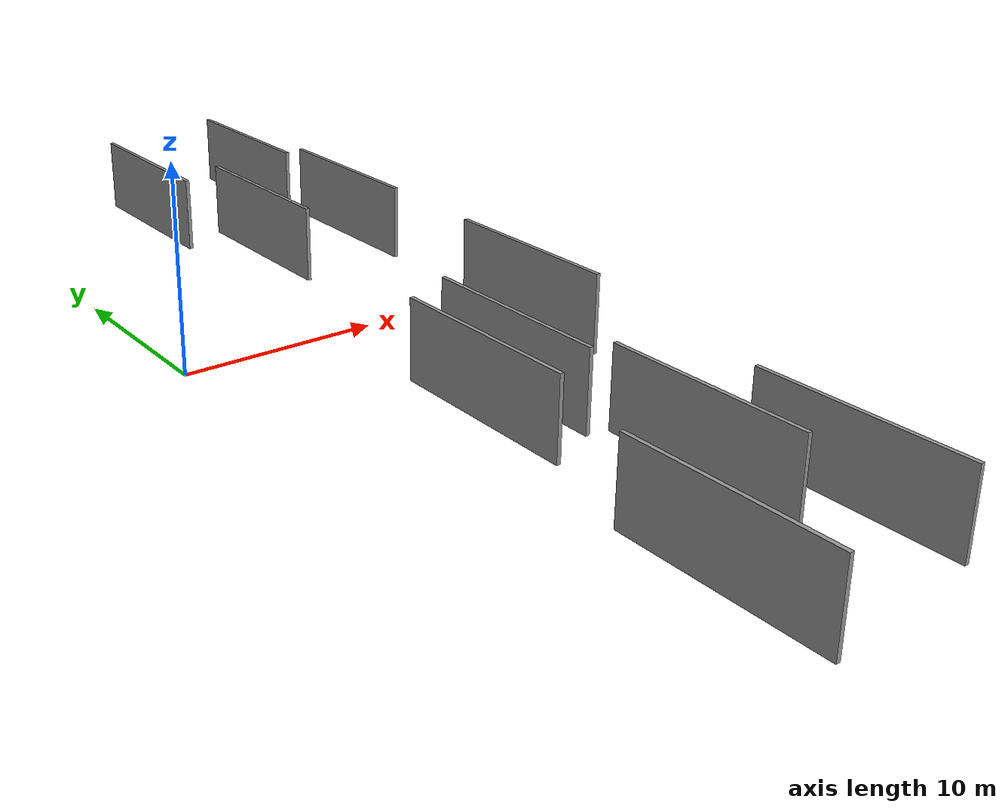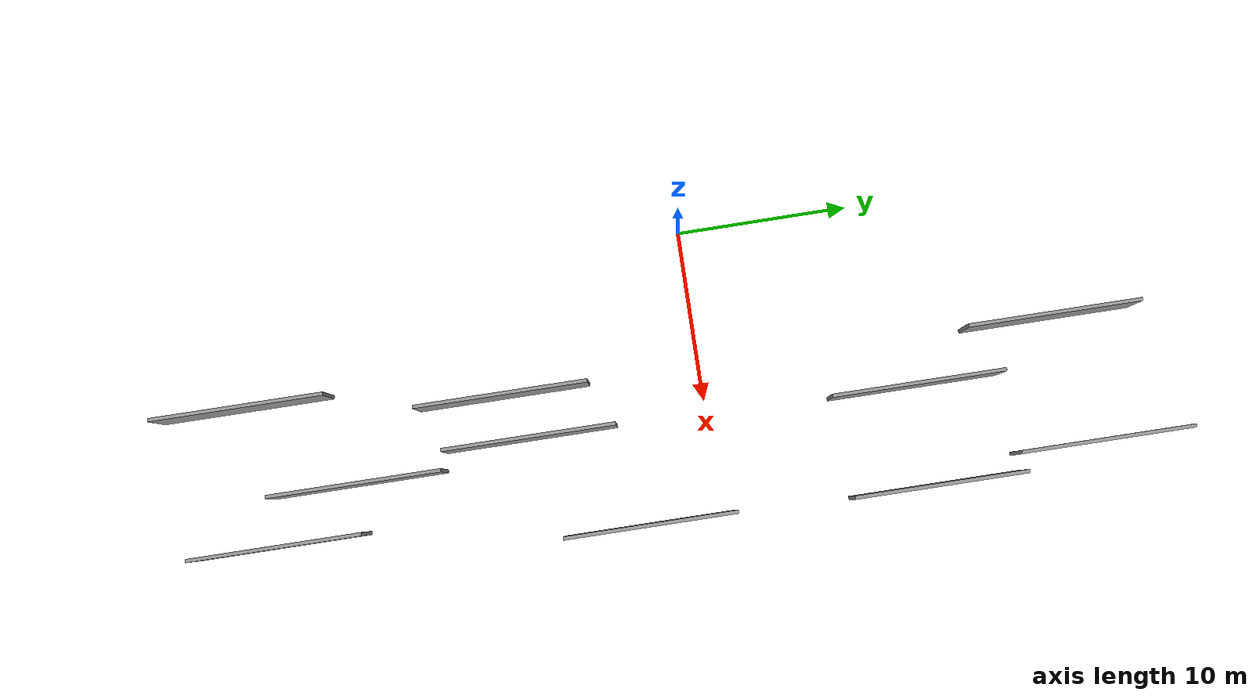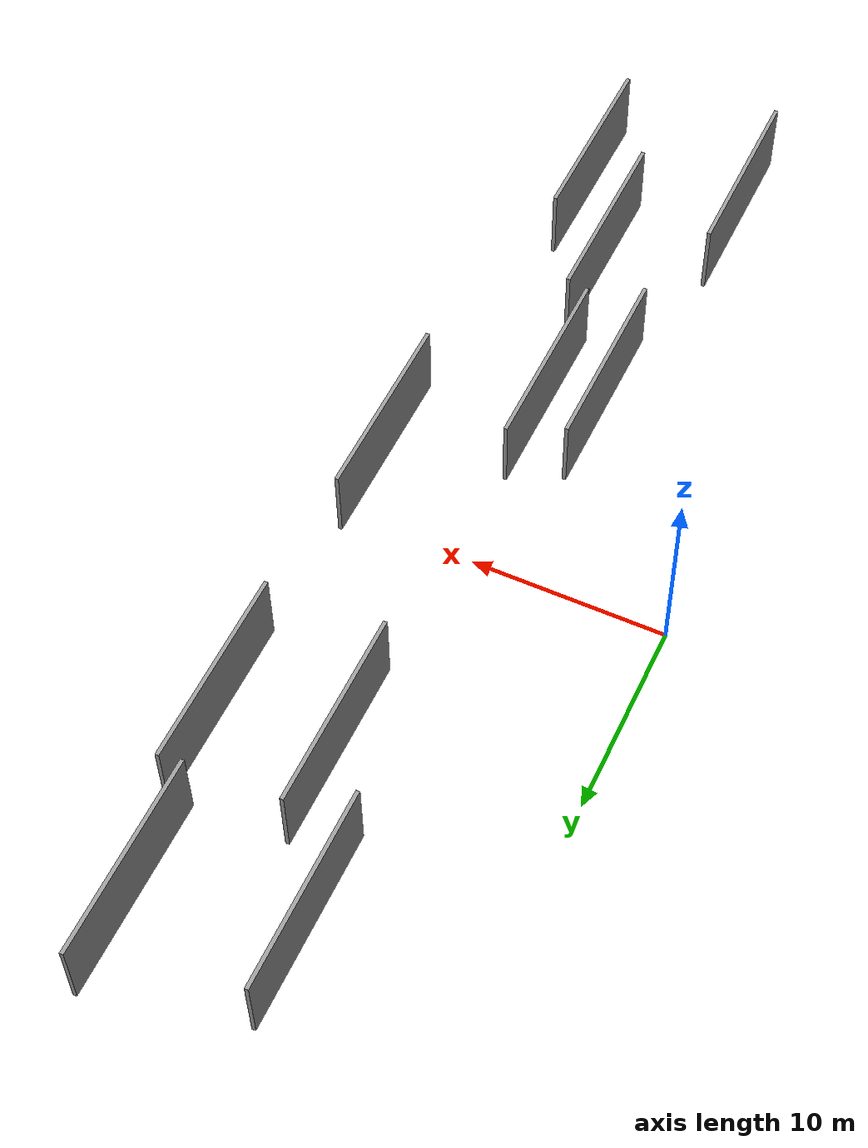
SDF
<sdf version="1.6">
 <world name="default">
  <scene>
   <sky><clouds><speed>12</speed></clouds></sky>
   <ambient>0.4 0.4 0.4 1</ambient>
   <background>0.7 0.7 0.7 1</background>
   <shadows>1</shadows>
  </scene>
  <gravity>0 0 -9.8066</gravity>
  <magnetic_field>6e-06 2.3e-05 -4.2e-05</magnetic_field>
  <physics default="0" name="default_physics" type="ode">
   <ode>
    <solver>
     <type>quick</type>
     <iters>10</iters>
     <sor>1.0</sor>
     <use_dynamic_moi_rescaling>0</use_dynamic_moi_rescaling>
    </solver>
    <constraints>
     <cfm>0</cfm>
     <erp>0.2</erp>
     <contact_max_correcting_vel>100</contact_max_correcting_vel>
     <contact_surface_layer>0.001</contact_surface_layer>
    </constraints>
   </ode>
   <max_step_size>0.004</max_step_size>
   <real_time_factor>1</real_time_factor>
   <real_time_update_rate>250</real_time_update_rate>
  </physics>
  <light name="sun" type="directional">
   <pose>0 0 10 0 0 0</pose>
   <diffuse>0.8 0.8 0.8 1</diffuse>
   <specular>0.2 0.2 0.2 1</specular>
   <attenuation>
    <range>1000</range>
    <constant>0.9</constant>
    <linear>0.01</linear>
    <quadratic>0.001</quadratic>
   </attenuation>
   <direction>-0.5 0.1 -0.9</direction>
  </light>
  <model name="grey_wall_1">
   <static>1</static>
   <pose>10.6852 -10.2069 0.0 0.000000 0.000000 1.570796</pose>
   <link name="link">
    <pose>0 0 2.00 0 0 0</pose>
    <collision name="collision"><geometry><box><size>10.00 0.2 4.00</size></box></geometry></collision>
    <visual name="visual">
     <cast_shadows>0</cast_shadows>
     <geometry><box><size>10.00 0.2 4.00</size></box></geometry>
     <material>
      <script>
       <uri>model://grey_wall/materials/scripts</uri>
       <uri>model://grey_wall/materials/textures</uri>
       <name>vrc/grey_wall</name>
      </script>
     </material>
    </visual>
   </link>
  </model>
  <model name="grey_wall_2">
   <static>1</static>
   <pose>16.8985 12.5197 0.0 0.000000 0.000000 1.570796</pose>
   <link name="link">
    <pose>0 0 2.00 0 0 0</pose>
    <collision name="collision"><geometry><box><size>10.00 0.2 4.00</size></box></geometry></collision>
    <visual name="visual">
     <cast_shadows>0</cast_shadows>
     <geometry><box><size>10.00 0.2 4.00</size></box></geometry>
     <material>
      <script>
       <uri>model://grey_wall/materials/scripts</uri>
       <uri>model://grey_wall/materials/textures</uri>
       <name>vrc/grey_wall</name>
      </script>
     </material>
    </visual>
   </link>
  </model>
  <model name="grey_wall_3">
   <static>1</static>
   <pose>11.0094 12.1647 0.0 0.000000 0.000000 1.570796</pose>
   <link name="link">
    <pose>0 0 2.00 0 0 0</pose>
    <collision name="collision"><geometry><box><size>10.00 0.2 4.00</size></box></geometry></collision>
    <visual name="visual">
     <cast_shadows>0</cast_shadows>
     <geometry><box><size>10.00 0.2 4.00</size></box></geometry>
     <material>
      <script>
       <uri>model://grey_wall/materials/scripts</uri>
       <uri>model://grey_wall/materials/textures</uri>
       <name>vrc/grey_wall</name>
      </script>
     </material>
    </visual>
   </link>
  </model>
  <model name="grey_wall_4">
   <static>1</static>
   <pose>16.6718 -4.0885 0.0 0.000000 0.000000 1.570796</pose>
   <link name="link">
    <pose>0 0 2.00 0 0 0</pose>
    <collision name="collision"><geometry><box><size>10.00 0.2 4.00</size></box></geometry></collision>
    <visual name="visual">
     <cast_shadows>0</cast_shadows>
     <geometry><box><size>10.00 0.2 4.00</size></box></geometry>
     <material>
      <script>
       <uri>model://grey_wall/materials/scripts</uri>
       <uri>model://grey_wall/materials/textures</uri>
       <name>vrc/grey_wall</name>
      </script>
     </material>
    </visual>
   </link>
  </model>
  <model name="grey_wall_5">
   <static>1</static>
   <pose>15.7822 22.2494 0.0 0.000000 0.000000 1.570796</pose>
   <link name="link">
    <pose>0 0 2.00 0 0 0</pose>
    <collision name="collision"><geometry><box><size>10.00 0.2 4.00</size></box></geometry></collision>
    <visual name="visual">
     <cast_shadows>0</cast_shadows>
     <geometry><box><size>10.00 0.2 4.00</size></box></geometry>
     <material>
      <script>
       <uri>model://grey_wall/materials/scripts</uri>
       <uri>model://grey_wall/materials/textures</uri>
       <name>vrc/grey_wall</name>
      </script>
     </material>
    </visual>
   </link>
  </model>
  <model name="grey_wall_6">
   <static>1</static>
   <pose>14.6932 -25.3143 0.0 0.000000 0.000000 1.570796</pose>
   <link name="link">
    <pose>0 0 2.00 0 0 0</pose>
    <collision name="collision"><geometry><box><size>10.00 0.2 4.00</size></box></geometry></collision>
    <visual name="visual">
     <cast_shadows>0</cast_shadows>
     <geometry><box><size>10.00 0.2 4.00</size></box></geometry>
     <material>
      <script>
       <uri>model://grey_wall/materials/scripts</uri>
       <uri>model://grey_wall/materials/textures</uri>
       <name>vrc/grey_wall</name>
      </script>
     </material>
    </visual>
   </link>
  </model>
  <model name="grey_wall_7">
   <static>1</static>
   <pose>8.0299 -11.4378 0.0 0.000000 0.000000 1.570796</pose>
   <link name="link">
    <pose>0 0 2.00 0 0 0</pose>
    <collision name="collision"><geometry><box><size>10.00 0.2 4.00</size></box></geometry></collision>
    <visual name="visual">
     <cast_shadows>0</cast_shadows>
     <geometry><box><size>10.00 0.2 4.00</size></box></geometry>
     <material>
      <script>
       <uri>model://grey_wall/materials/scripts</uri>
       <uri>model://grey_wall/materials/textures</uri>
       <name>vrc/grey_wall</name>
      </script>
     </material>
    </visual>
   </link>
  </model>
  <model name="grey_wall_8">
   <static>1</static>
   <pose>11.8078 -20.3737 0.0 0.000000 0.000000 1.570796</pose>
   <link name="link">
    <pose>0 0 2.00 0 0 0</pose>
    <collision name="collision"><geometry><box><size>10.00 0.2 4.00</size></box></geometry></collision>
    <visual name="visual">
     <cast_shadows>0</cast_shadows>
     <geometry><box><size>10.00 0.2 4.00</size></box></geometry>
     <material>
      <script>
       <uri>model://grey_wall/materials/scripts</uri>
       <uri>model://grey_wall/materials/textures</uri>
       <name>vrc/grey_wall</name>
      </script>
     </material>
    </visual>
   </link>
  </model>
  <model name="grey_wall_9">
   <static>1</static>
   <pose>8.2366 20.4278 0.0 0.000000 0.000000 1.570796</pose>
   <link name="link">
    <pose>0 0 2.00 0 0 0</pose>
    <collision name="collision"><geometry><box><size>10.00 0.2 4.00</size></box></geometry></collision>
    <visual name="visual">
     <cast_shadows>0</cast_shadows>
     <geometry><box><size>10.00 0.2 4.00</size></box></geometry>
     <material>
      <script>
       <uri>model://grey_wall/materials/scripts</uri>
       <uri>model://grey_wall/materials/textures</uri>
       <name>vrc/grey_wall</name>
      </script>
     </material>
    </visual>
   </link>
  </model>
  <model name="grey_wall_10">
   <static>1</static>
   <pose>6.5038 -26.3477 0.0 0.000000 0.000000 1.570796</pose>
   <link name="link">
    <pose>0 0 2.00 0 0 0</pose>
    <collision name="collision"><geometry><box><size>10.00 0.2 4.00</size></box></geometry></collision>
    <visual name="visual">
     <cast_shadows>0</cast_shadows>
     <geometry><box><size>10.00 0.2 4.00</size></box></geometry>
     <material>
      <script>
       <uri>model://grey_wall/materials/scripts</uri>
       <uri>model://grey_wall/materials/textures</uri>
       <name>vrc/grey_wall</name>
      </script>
     </material>
    </visual>
   </link>
  </model>
 </world>
</sdf>
